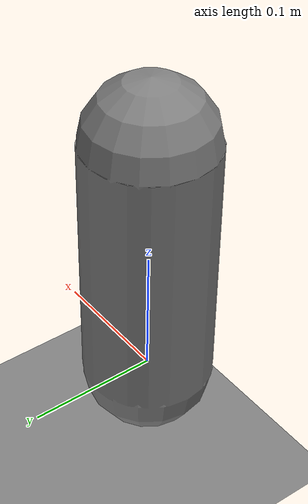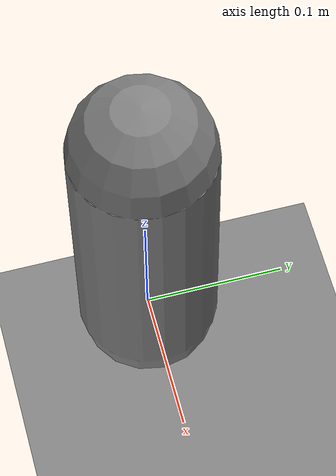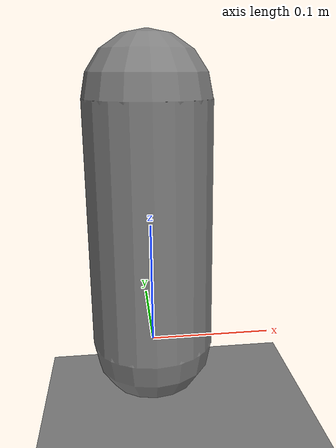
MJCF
<mujoco model="test_1dof_multimode">
  <option timestep="0.001" integrator="RK4" solver="PGS"/>

  <worldbody>
    <geom type="plane" size="1 1 0.1" pos="0 0 -0.1"/>

    <body name="link" pos="0 0 0">
      <joint name="j1" type="hinge" axis="0 0 1" damping="5.0"/>
      <inertial pos="0 0 0.1" mass="2.0" diaginertia="0.05 0.05 0.01"/>
      <geom type="capsule" fromto="0 0 0  0 0 0.2" size="0.05"/>
    </body>
  </worldbody>

  <actuator>
    <!-- Position actuator: validated kp=100, kv=0 -->
    <position name="act_pos_j1" joint="j1"
              kp="100.0" kv="0.0"
              ctrlrange="-1.57 1.57" forcerange="-20 20"/>

    <!-- Velocity actuator: validated kv=10 -->
    <velocity name="act_vel_j1" joint="j1"
              kv="10.0"
              ctrlrange="-2.0 2.0" forcerange="-20 20"/>

    <!-- Motor actuator: direct torque -->
    <motor name="act_tau_j1" joint="j1"
           ctrlrange="-20 20" forcerange="-20 20"/>
  </actuator>
</mujoco>
